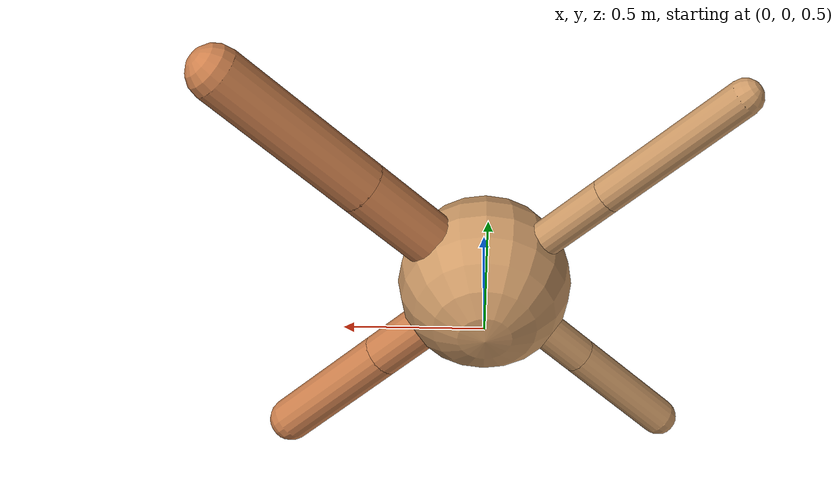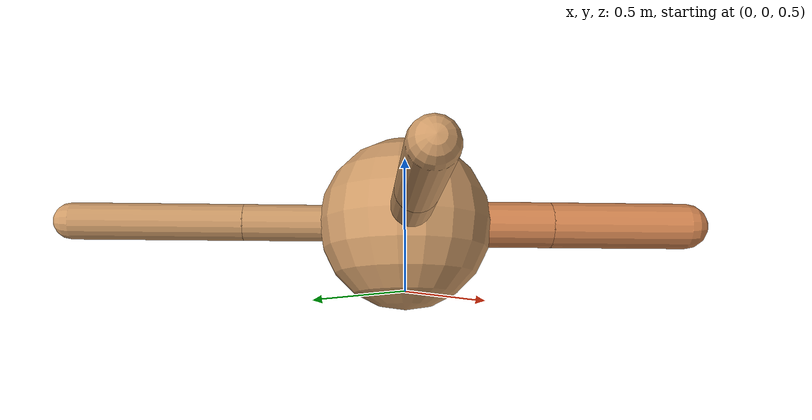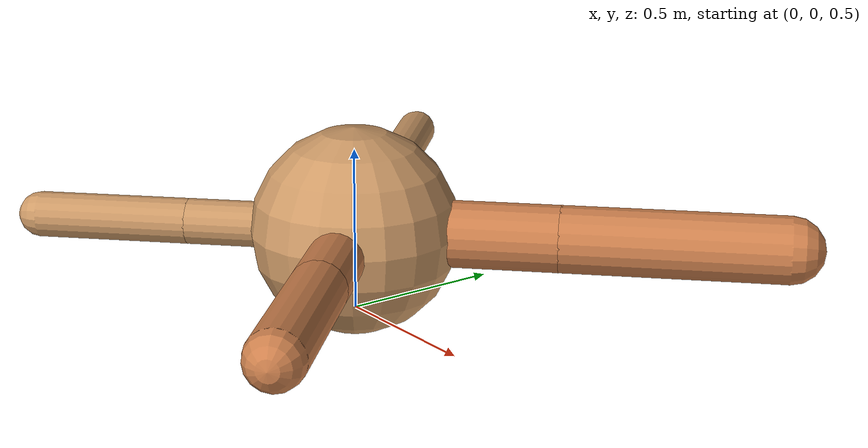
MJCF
<?xml version="1.0" ?>
<mujoco model="ant">

	<compiler angle="degree" coordinate="local" inertiafromgeom="true"/>

	<option integrator="RK4" timestep="0.01"/>

	<custom>

		<numeric data="0.0 0.0 0.55 1.0 0.0 0.0 0.0 0.0 1.0 0.0 -1.0 0.0 -1.0 0.0 1.0" name="init_qpos"/>

	</custom>

	<default>

		<joint armature="1" damping="1" limited="true"/>

		<geom conaffinity="0" condim="3" density="5.0" friction="1.5 0.1 0.1" margin="0.01" rgba="0.8 0.6 0.4 1"/>

	</default>

	<worldbody>

		<body name="torso" pos="0 0 0.75">

			<geom name="torso_geom" pos="0 0 0" size="0.3175850121628276" type="sphere"/>

			<!--joint armature="0" damping="0" limited="false" margin="0.01" name="root" pos="0 0 0" type="free"/-->

			<body name="front_left_leg" pos="0 0 0">

				<geom fromto="0 0 0 0.2 0.2 0" name="aux_1_geom" size="0.10223741964666742" type="capsule" rgba=".8 .5 .3 1"/>

				<body name="aux_1" pos="0.2 0.2 0">

					<joint axis="0 0 1" name="hip_1" pos="0.0 0.0 0.0" range="-40 40" type="hinge"/>

					<geom fromto="0 0 0 0.23835489005571242 0.23835489005571242 0" name="left_leg_geom" size="0.10223741964666742" type="capsule" rgba=".8 .5 .3 1"/>

					<body pos="0.23835489005571242 0.23835489005571242 0" name="front_left_foot">

						<joint axis="-1 1 0" name="ankle_1" pos="0.0 0.0 0.0" range="30 100" type="hinge"/>

						<geom fromto="0 0 0 0.47670978011142484 0.47670978011142484 0" name="left_ankle_geom" size="0.10223741964666742" type="capsule" rgba=".8 .5 .3 1"/>

					</body>

				</body>

			</body>

			<body name="front_right_leg" pos="0 0 0">

				<geom fromto="0 0 0 -0.2 0.2 0" name="aux_2_geom" size="0.06677416171257829" type="capsule"/>

				<body name="aux_2" pos="-0.2 0.2 0">

					<joint axis="0 0 1" name="hip_2" pos="0.0 0.0 0.0" range="-40 40" type="hinge"/>

					<geom fromto="0 0 0 -0.21751659463982326 0.21751659463982326 0" name="right_leg_geom" size="0.06677416171257829" type="capsule"/>

					<body pos="-0.21751659463982326 0.21751659463982326 0" name="front_right_foot">

						<joint axis="1 1 0" name="ankle_2" pos="0.0 0.0 0.0" range="-100 -30" type="hinge"/>

						<geom fromto="0 0 0 -0.4350331892796465 0.4350331892796465 0" name="right_ankle_geom" size="0.06677416171257829" type="capsule"/>

					</body>

				</body>

			</body>

			<body name="left_back_leg" pos="0 0 0">

				<geom fromto="0 0 0 -0.2 -0.2 0" name="aux_3_geom" size="0.07057975670267563" type="capsule"/>

				<body name="aux_3" pos="-0.2 -0.2 0">

					<joint axis="0 0 1" name="hip_3" pos="0.0 0.0 0.0" range="-40 40" type="hinge"/>

					<geom fromto="0 0 0 -0.16680706470352816 -0.16680706470352816 0" name="back_leg_geom" size="0.07057975670267563" type="capsule"/>

					<body pos="-0.16680706470352816 -0.16680706470352816 0" name="left_back_foot">

						<joint axis="-1 1 0" name="ankle_3" pos="0.0 0.0 0.0" range="-100 -30" type="hinge"/>

						<geom fromto="0 0 0 -0.3336141294070563 -0.3336141294070563 0" name="third_ankle_geom" size="0.07057975670267563" type="capsule"/>

					</body>

				</body>

			</body>

			<body name="right_back_leg" pos="0 0 0">

				<geom fromto="0 0 0 0.2 -0.2 0" name="aux_4_geom" size="0.08478412615824443" type="capsule" rgba=".8 .5 .3 1"/>

				<body name="aux_4" pos="0.2 -0.2 0">

					<joint axis="0 0 1" name="hip_4" pos="0.0 0.0 0.0" range="-40 40" type="hinge"/>

					<geom fromto="0 0 0 0.1811610038206268 -0.1811610038206268 0" name="rightback_leg_geom" size="0.08478412615824443" type="capsule" rgba=".8 .5 .3 1"/>

					<body pos="0.1811610038206268 -0.1811610038206268 0" name="right_back_foot">

						<joint axis="1 1 0" name="ankle_4" pos="0.0 0.0 0.0" range="30 100" type="hinge"/>

						<geom fromto="0 0 0 0.3623220076412536 -0.3623220076412536 0" name="fourth_ankle_geom" size="0.08478412615824443" type="capsule" rgba=".8 .5 .3 1"/>

					</body>

				</body>

			</body>

		</body>

	</worldbody>

	<actuator>

		<motor ctrllimited="true" ctrlrange="-1.0 1.0" joint="hip_4" gear="150"/>

		<motor ctrllimited="true" ctrlrange="-1.0 1.0" joint="ankle_4" gear="150"/>

		<motor ctrllimited="true" ctrlrange="-1.0 1.0" joint="hip_1" gear="150"/>

		<motor ctrllimited="true" ctrlrange="-1.0 1.0" joint="ankle_1" gear="150"/>

		<motor ctrllimited="true" ctrlrange="-1.0 1.0" joint="hip_2" gear="150"/>

		<motor ctrllimited="true" ctrlrange="-1.0 1.0" joint="ankle_2" gear="150"/>

		<motor ctrllimited="true" ctrlrange="-1.0 1.0" joint="hip_3" gear="150"/>

		<motor ctrllimited="true" ctrlrange="-1.0 1.0" joint="ankle_3" gear="150"/>

	</actuator>

</mujoco>
